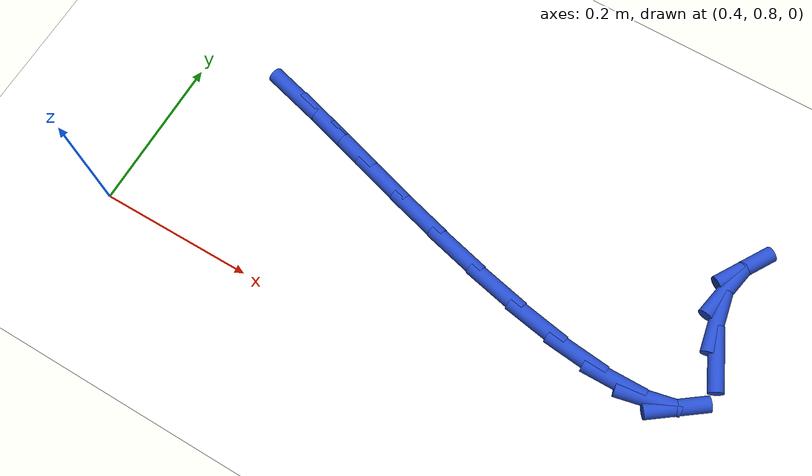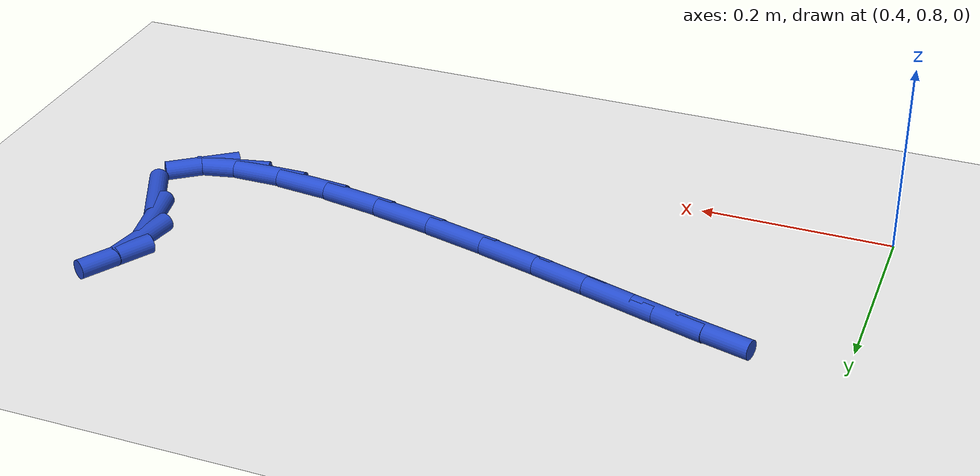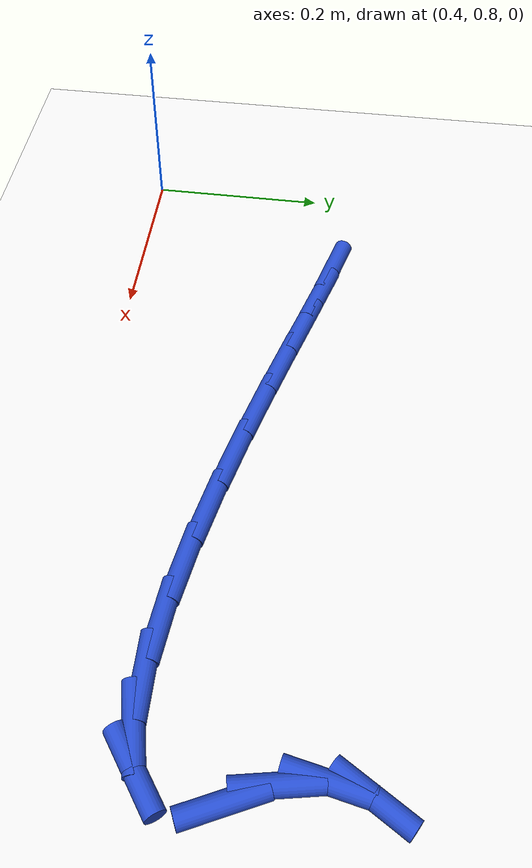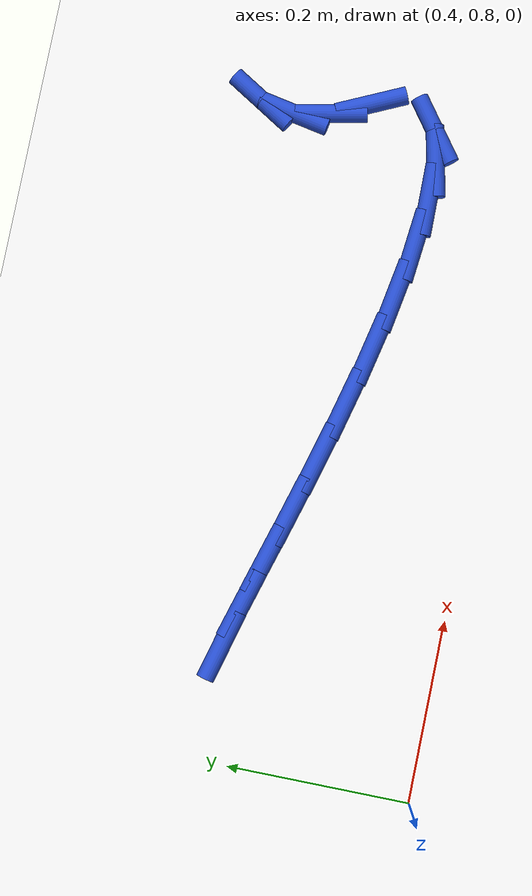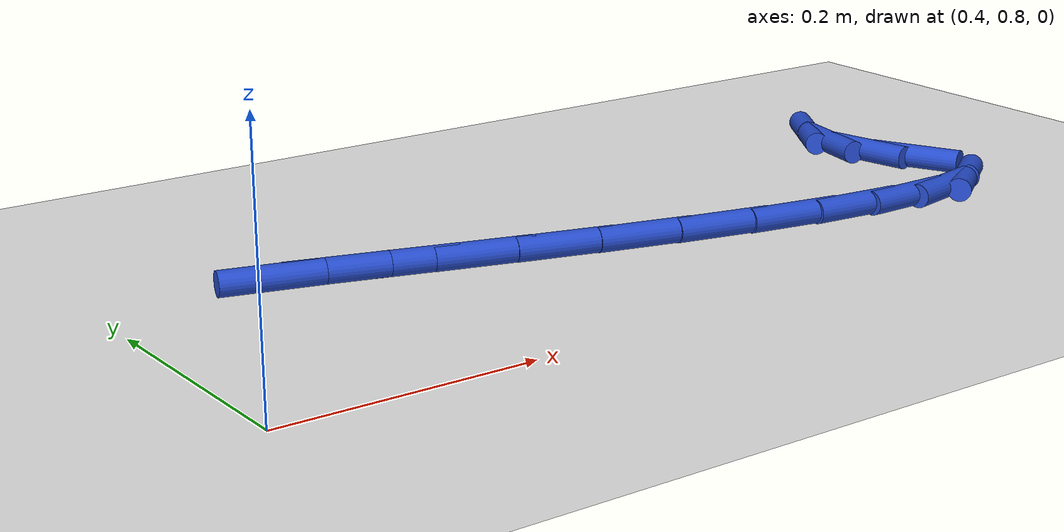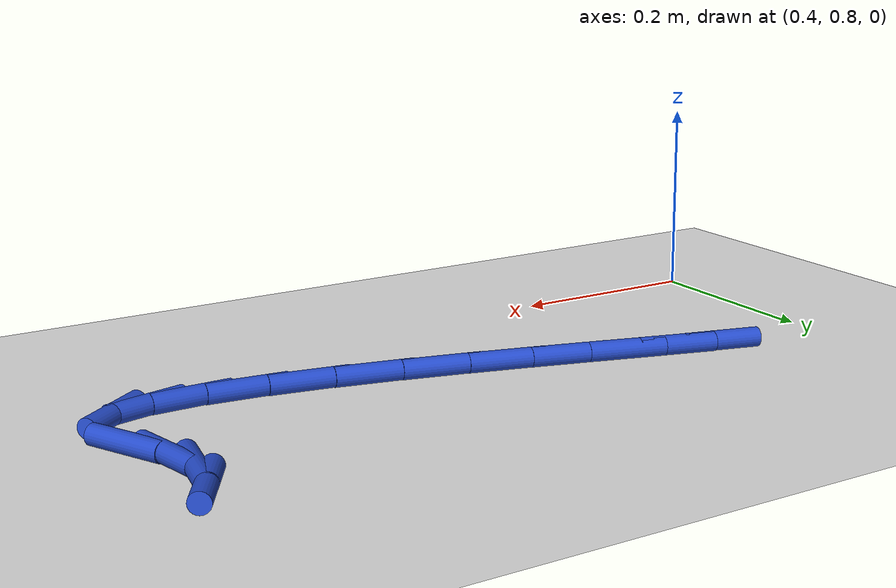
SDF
<sdf version="1.6">
 <world name="default">
  <model name="ground_plane">
   <static>1</static>
   <link name="link">
    <collision name="collision">
     <geometry><plane><normal>0 0 1</normal><size>100 100</size></plane></geometry>
     <surface><friction><ode><mu>100</mu><mu2>50</mu2></ode></friction></surface>
    </collision>
    <visual name="visual">
     <cast_shadows>0</cast_shadows>
     <geometry><plane><normal>0 0 1</normal><size>100 100</size></plane></geometry>
     <material>
      <script><uri>file://media/materials/scripts/gazebo.material</uri><name>Gazebo/WhiteGlow</name></script>
     </material>
    </visual>
   </link>
  </model>
  <model name="line">
   <link name="link_29">
    <pose>0.5270545869305834 1.0317763641336664 0.01 0 1.57 -0.25806034854803295</pose>
    <collision name="collision">
     <geometry><cylinder><radius>0.01</radius><length>0.08</length></cylinder></geometry>
    </collision>
    <visual name="visual">
     <material>
      <script><name>Gazebo/Blue</name><uri>file://media/materials/scripts/gazebo.material</uri></script>
     </material>
     <geometry><cylinder><radius>0.01</radius><length>0.08</length></cylinder></geometry>
    </visual>
   </link>
   <link name="link_30">
    <pose>0.5742406362721629 1.019321809565829 0.01 0 1.57 -0.28186292065076246</pose>
    <collision name="collision">
     <geometry><cylinder><radius>0.01</radius><length>0.08</length></cylinder></geometry>
    </collision>
    <visual name="visual">
     <material>
      <script><name>Gazebo/Blue</name><uri>file://media/materials/scripts/gazebo.material</uri></script>
     </material>
     <geometry><cylinder><radius>0.01</radius><length>0.08</length></cylinder></geometry>
    </visual>
   </link>
   <link name="link_31">
    <pose>0.6261621343377513 1.0042867783165927 0.01 0 1.57 -0.285642556510455</pose>
    <collision name="collision">
     <geometry><cylinder><radius>0.01</radius><length>0.08</length></cylinder></geometry>
    </collision>
    <visual name="visual">
     <material>
      <script><name>Gazebo/Blue</name><uri>file://media/materials/scripts/gazebo.material</uri></script>
     </material>
     <geometry><cylinder><radius>0.01</radius><length>0.08</length></cylinder></geometry>
    </visual>
   </link>
   <link name="link_32">
    <pose>0.6833004544550433 0.9875067710316887 0.01 0 1.57 -0.277534522926929</pose>
    <collision name="collision">
     <geometry><cylinder><radius>0.01</radius><length>0.08</length></cylinder></geometry>
    </collision>
    <visual name="visual">
     <material>
      <script><name>Gazebo/Blue</name><uri>file://media/materials/scripts/gazebo.material</uri></script>
     </material>
     <geometry><cylinder><radius>0.01</radius><length>0.08</length></cylinder></geometry>
    </visual>
   </link>
   <link name="link_33">
    <pose>0.7450069925418794 0.9699273885210464 0.01 0 1.57 -0.2631560042710093</pose>
    <collision name="collision">
     <geometry><cylinder><radius>0.01</radius><length>0.08</length></cylinder></geometry>
    </collision>
    <visual name="visual">
     <material>
      <script><name>Gazebo/Blue</name><uri>file://media/materials/scripts/gazebo.material</uri></script>
     </material>
     <geometry><cylinder><radius>0.01</radius><length>0.08</length></cylinder></geometry>
    </visual>
   </link>
   <link name="link_34">
    <pose>0.8091981462610565 0.9526340516849137 0.01 0 1.57 -0.24188227856018582</pose>
    <collision name="collision">
     <geometry><cylinder><radius>0.01</radius><length>0.08</length></cylinder></geometry>
    </collision>
    <visual name="visual">
     <material>
      <script><name>Gazebo/Blue</name><uri>file://media/materials/scripts/gazebo.material</uri></script>
     </material>
     <geometry><cylinder><radius>0.01</radius><length>0.08</length></cylinder></geometry>
    </visual>
   </link>
   <link name="link_35">
    <pose>0.8736976475123334 0.9367212103790179 0.01 0 1.57 -0.21135043329230913</pose>
    <collision name="collision">
     <geometry><cylinder><radius>0.01</radius><length>0.08</length></cylinder></geometry>
    </collision>
    <visual name="visual">
     <material>
      <script><name>Gazebo/Blue</name><uri>file://media/materials/scripts/gazebo.material</uri></script>
     </material>
     <geometry><cylinder><radius>0.01</radius><length>0.08</length></cylinder></geometry>
    </visual>
   </link>
   <link name="link_36">
    <pose>0.9363292281954696 0.9232833144590866 0.01 0 1.57 -0.16687425508155795</pose>
    <collision name="collision">
     <geometry><cylinder><radius>0.01</radius><length>0.08</length></cylinder></geometry>
    </collision>
    <visual name="visual">
     <material>
      <script><name>Gazebo/Blue</name><uri>file://media/materials/scripts/gazebo.material</uri></script>
     </material>
     <geometry><cylinder><radius>0.01</radius><length>0.08</length></cylinder></geometry>
    </visual>
   </link>
   <link name="link_37">
    <pose>0.9949166202102242 0.9134148137808471 0.01 0 1.57 -0.09906287607964231</pose>
    <collision name="collision">
     <geometry><cylinder><radius>0.01</radius><length>0.08</length></cylinder></geometry>
    </collision>
    <visual name="visual">
     <material>
      <script><name>Gazebo/Blue</name><uri>file://media/materials/scripts/gazebo.material</uri></script>
     </material>
     <geometry><cylinder><radius>0.01</radius><length>0.08</length></cylinder></geometry>
    </visual>
   </link>
   <link name="link_38">
    <pose>1.0472835554563564 0.9082101582000266 0.01 0 1.57 0.012590572401151719</pose>
    <collision name="collision">
     <geometry><cylinder><radius>0.01</radius><length>0.08</length></cylinder></geometry>
    </collision>
    <visual name="visual">
     <material>
      <script><name>Gazebo/Blue</name><uri>file://media/materials/scripts/gazebo.material</uri></script>
     </material>
     <geometry><cylinder><radius>0.01</radius><length>0.08</length></cylinder></geometry>
    </visual>
   </link>
   <link name="link_39">
    <pose>1.091253765833626 0.9087637975723529 0.01 0 1.57 0.2182346322781759</pose>
    <collision name="collision">
     <geometry><cylinder><radius>0.01</radius><length>0.08</length></cylinder></geometry>
    </collision>
    <visual name="visual">
     <material>
      <script><name>Gazebo/Blue</name><uri>file://media/materials/scripts/gazebo.material</uri></script>
     </material>
     <geometry><cylinder><radius>0.01</radius><length>0.08</length></cylinder></geometry>
    </visual>
   </link>
   <link name="link_40">
    <pose>1.1246509832417912 0.9161701817535526 0.01 0 1.57 0.6393849790030512</pose>
    <collision name="collision">
     <geometry><cylinder><radius>0.01</radius><length>0.08</length></cylinder></geometry>
    </collision>
    <visual name="visual">
     <material>
      <script><name>Gazebo/Blue</name><uri>file://media/materials/scripts/gazebo.material</uri></script>
     </material>
     <geometry><cylinder><radius>0.01</radius><length>0.08</length></cylinder></geometry>
    </visual>
   </link>
   <link name="link_43">
    <pose>1.139897186151034 0.990348313481829 0.01 0 1.57 -1.1331733186361472</pose>
    <collision name="collision">
     <geometry><cylinder><radius>0.01</radius><length>0.08</length></cylinder></geometry>
    </collision>
    <visual name="visual">
     <material>
      <script><name>Gazebo/Blue</name><uri>file://media/materials/scripts/gazebo.material</uri></script>
     </material>
     <geometry><cylinder><radius>0.01</radius><length>0.08</length></cylinder></geometry>
    </visual>
   </link>
   <link name="link_44">
    <pose>1.1206127888355242 1.031564863145676 0.01 0 1.57 -1.3776159690278627</pose>
    <collision name="collision">
     <geometry><cylinder><radius>0.01</radius><length>0.08</length></cylinder></geometry>
    </collision>
    <visual name="visual">
     <material>
      <script><name>Gazebo/Blue</name><uri>file://media/materials/scripts/gazebo.material</uri></script>
     </material>
     <geometry><cylinder><radius>0.01</radius><length>0.08</length></cylinder></geometry>
    </visual>
   </link>
   <link name="link_45">
    <pose>1.1127396175747555 1.0718121642143739 0.01 0 1.57 1.3802352312611053</pose>
    <collision name="collision">
     <geometry><cylinder><radius>0.01</radius><length>0.08</length></cylinder></geometry>
    </collision>
    <visual name="visual">
     <material>
      <script><name>Gazebo/Blue</name><uri>file://media/materials/scripts/gazebo.material</uri></script>
     </material>
     <geometry><cylinder><radius>0.01</radius><length>0.08</length></cylinder></geometry>
    </visual>
   </link>
   <link name="link_46">
    <pose>1.1198927889993353 1.1088941059618003 0.01 0 1.57 1.0259331059388677</pose>
    <collision name="collision">
     <geometry><cylinder><radius>0.01</radius><length>0.08</length></cylinder></geometry>
    </collision>
    <visual name="visual">
     <material>
      <script><name>Gazebo/Blue</name><uri>file://media/materials/scripts/gazebo.material</uri></script>
     </material>
     <geometry><cylinder><radius>0.01</radius><length>0.08</length></cylinder></geometry>
    </visual>
   </link>
  </model>
 </world>
</sdf>
